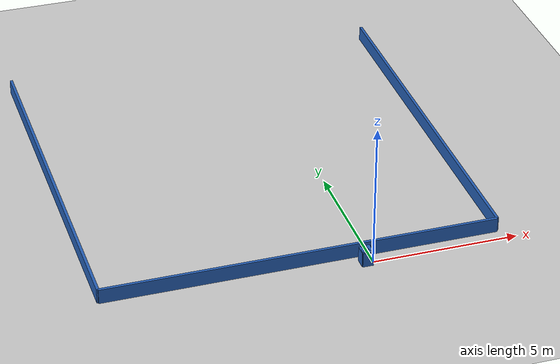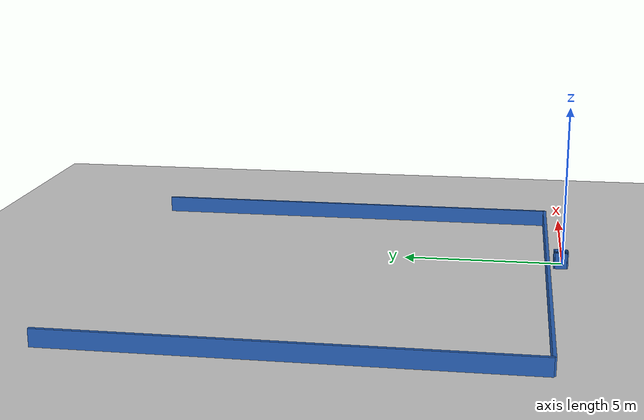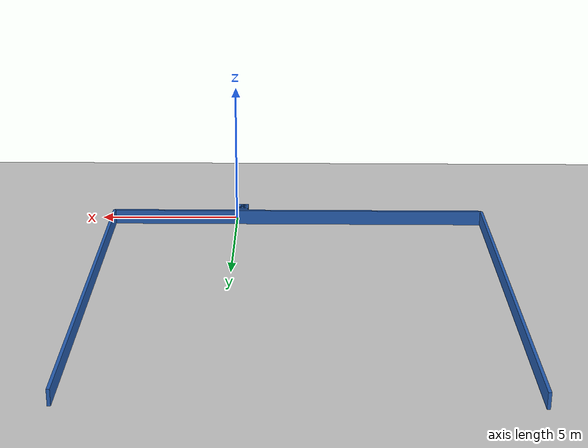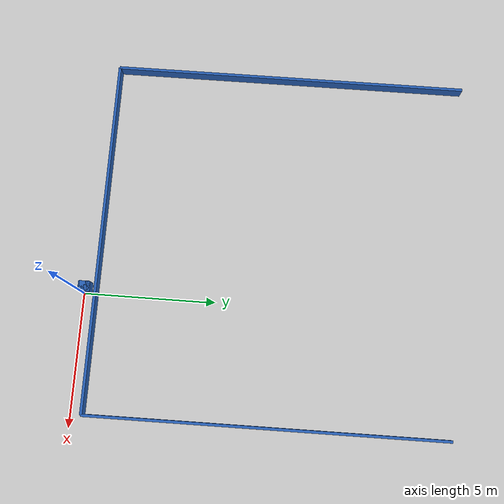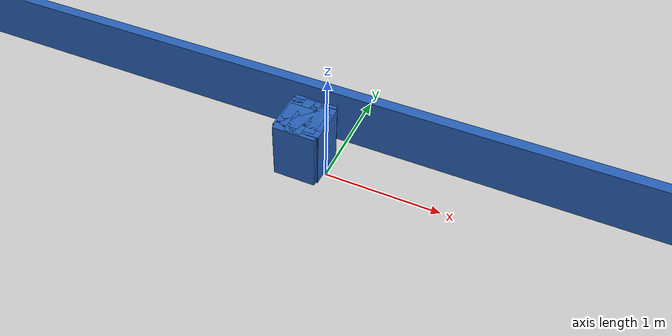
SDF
<?xml version="1.0" ?>
    <sdf version="1.5">
      <world name="default">
        <!-- A global light source -->
        <include>
          <uri>model://sun</uri>
        </include>
        <!-- A ground plane -->
        <include>
          <uri>model://ground_plane</uri>
        </include>

    <model name='libopen_space_final_T2B_115_24'>
      <static>1</static>
      <pose frame=''>-0.225000 0.075000 0.000000 0.000000 0.000000 0.000000</pose>
      <link name='link'>
        <inertial>
          <mass>1</mass>
          <inertia>
            <ixx>0.145833</ixx>
            <ixy>0</ixy>
            <ixz>0</ixz>
            <iyy>0.145833</iyy>
            <iyz>0</iyz>
            <izz>0.125</izz>
          </inertia>
        </inertial>
        <collision name='collision'>
          <geometry>
            <box>
              <size>0.14 0.20 1</size>
            </box>
          </geometry>
          <max_contacts>10</max_contacts>
          <surface>
            <contact>
              <ode/>
            </contact>
            <bounce/>
            <friction>
              <torsional>
                <ode/>
              </torsional>
              <ode/>
            </friction>
          </surface>
        </collision>
        <visual name='visual'>
          <geometry>
            <box>
              <size>0.14 0.20 1</size>
            </box>
          </geometry>
	    <material>
              <ambient>0.152000 0.379000 0.720000 1</ambient>
	      <diffuse>0.152000 0.379000 0.720000 1</diffuse>
          </material>
          <material>
            <script>
              <name>Gazebo/Grey</name>
              <uri>file://media/materials/scripts/gazebo.material</uri>
            </script>
          </material>
        </visual>
        <self_collide>0</self_collide>
        <kinematic>0</kinematic>
        <gravity>1</gravity>
      </link>
      <plugin name='libopen_space_final_T2B_115_24' filename='libopen_space_final_T2B_115_24.so'/>
    </model>

    <model name='libopen_space_final_T2B_125_59'>
      <static>1</static>
      <pose frame=''>-0.225000 0.075000 0.000000 0.000000 0.000000 0.000000</pose>
      <link name='link'>
        <inertial>
          <mass>1</mass>
          <inertia>
            <ixx>0.145833</ixx>
            <ixy>0</ixy>
            <ixz>0</ixz>
            <iyy>0.145833</iyy>
            <iyz>0</iyz>
            <izz>0.125</izz>
          </inertia>
        </inertial>
        <collision name='collision'>
          <geometry>
            <box>
              <size>0.11 0.42 1</size>
            </box>
          </geometry>
          <max_contacts>10</max_contacts>
          <surface>
            <contact>
              <ode/>
            </contact>
            <bounce/>
            <friction>
              <torsional>
                <ode/>
              </torsional>
              <ode/>
            </friction>
          </surface>
        </collision>
        <visual name='visual'>
          <geometry>
            <box>
              <size>0.11 0.42 1</size>
            </box>
          </geometry>
	    <material>
              <ambient>0.152000 0.379000 0.720000 1</ambient>
	      <diffuse>0.152000 0.379000 0.720000 1</diffuse>
          </material>
          <material>
            <script>
              <name>Gazebo/Grey</name>
              <uri>file://media/materials/scripts/gazebo.material</uri>
            </script>
          </material>
        </visual>
        <self_collide>0</self_collide>
        <kinematic>0</kinematic>
        <gravity>1</gravity>
      </link>
      <plugin name='libopen_space_final_T2B_125_59' filename='libopen_space_final_T2B_125_59.so'/>
    </model>

    <model name='libopen_space_final_T2B_121_6'>
      <static>1</static>
      <pose frame=''>-0.225000 0.075000 0.000000 0.000000 0.000000 0.000000</pose>
      <link name='link'>
        <inertial>
          <mass>1</mass>
          <inertia>
            <ixx>0.145833</ixx>
            <ixy>0</ixy>
            <ixz>0</ixz>
            <iyy>0.145833</iyy>
            <iyz>0</iyz>
            <izz>0.125</izz>
          </inertia>
        </inertial>
        <collision name='collision'>
          <geometry>
            <box>
              <size>0.14 0.16 1</size>
            </box>
          </geometry>
          <max_contacts>10</max_contacts>
          <surface>
            <contact>
              <ode/>
            </contact>
            <bounce/>
            <friction>
              <torsional>
                <ode/>
              </torsional>
              <ode/>
            </friction>
          </surface>
        </collision>
        <visual name='visual'>
          <geometry>
            <box>
              <size>0.14 0.16 1</size>
            </box>
          </geometry>
	    <material>
              <ambient>0.152000 0.379000 0.720000 1</ambient>
	      <diffuse>0.152000 0.379000 0.720000 1</diffuse>
          </material>
          <material>
            <script>
              <name>Gazebo/Grey</name>
              <uri>file://media/materials/scripts/gazebo.material</uri>
            </script>
          </material>
        </visual>
        <self_collide>0</self_collide>
        <kinematic>0</kinematic>
        <gravity>1</gravity>
      </link>
      <plugin name='libopen_space_final_T2B_121_6' filename='libopen_space_final_T2B_121_6.so'/>
    </model>

    <model name='libopen_space_final_T2B_77_58'>
      <static>1</static>
      <pose frame=''>-0.225000 0.075000 0.000000 0.000000 0.000000 0.000000</pose>
      <link name='link'>
        <inertial>
          <mass>1</mass>
          <inertia>
            <ixx>0.145833</ixx>
            <ixy>0</ixy>
            <ixz>0</ixz>
            <iyy>0.145833</iyy>
            <iyz>0</iyz>
            <izz>0.125</izz>
          </inertia>
        </inertial>
        <collision name='collision'>
          <geometry>
            <box>
              <size>0.39 0.38 1</size>
            </box>
          </geometry>
          <max_contacts>10</max_contacts>
          <surface>
            <contact>
              <ode/>
            </contact>
            <bounce/>
            <friction>
              <torsional>
                <ode/>
              </torsional>
              <ode/>
            </friction>
          </surface>
        </collision>
        <visual name='visual'>
          <geometry>
            <box>
              <size>0.39 0.38 1</size>
            </box>
          </geometry>
	    <material>
              <ambient>0.152000 0.379000 0.720000 1</ambient>
	      <diffuse>0.152000 0.379000 0.720000 1</diffuse>
          </material>
          <material>
            <script>
              <name>Gazebo/Grey</name>
              <uri>file://media/materials/scripts/gazebo.material</uri>
            </script>
          </material>
        </visual>
        <self_collide>0</self_collide>
        <kinematic>0</kinematic>
        <gravity>1</gravity>
      </link>
      <plugin name='libopen_space_final_T2B_77_58' filename='libopen_space_final_T2B_77_58.so'/>
    </model>

    <model name='libopen_space_final_T2B_103_85'>
      <static>1</static>
      <pose frame=''>-0.225000 0.075000 0.000000 0.000000 0.000000 0.000000</pose>
      <link name='link'>
        <inertial>
          <mass>1</mass>
          <inertia>
            <ixx>0.145833</ixx>
            <ixy>0</ixy>
            <ixz>0</ixz>
            <iyy>0.145833</iyy>
            <iyz>0</iyz>
            <izz>0.125</izz>
          </inertia>
        </inertial>
        <collision name='collision'>
          <geometry>
            <box>
              <size>0.35 0.38 1</size>
            </box>
          </geometry>
          <max_contacts>10</max_contacts>
          <surface>
            <contact>
              <ode/>
            </contact>
            <bounce/>
            <friction>
              <torsional>
                <ode/>
              </torsional>
              <ode/>
            </friction>
          </surface>
        </collision>
        <visual name='visual'>
          <geometry>
            <box>
              <size>0.35 0.38 1</size>
            </box>
          </geometry>
	    <material>
              <ambient>0.152000 0.379000 0.720000 1</ambient>
	      <diffuse>0.152000 0.379000 0.720000 1</diffuse>
          </material>
          <material>
            <script>
              <name>Gazebo/Grey</name>
              <uri>file://media/materials/scripts/gazebo.material</uri>
            </script>
          </material>
        </visual>
        <self_collide>0</self_collide>
        <kinematic>0</kinematic>
        <gravity>1</gravity>
      </link>
      <plugin name='libopen_space_final_T2B_103_85' filename='libopen_space_final_T2B_103_85.so'/>
    </model>

    <model name='libopen_space_final_T2B_122_2'>
      <static>1</static>
      <pose frame=''>-0.225000 0.075000 0.000000 0.000000 0.000000 0.000000</pose>
      <link name='link'>
        <inertial>
          <mass>1</mass>
          <inertia>
            <ixx>0.145833</ixx>
            <ixy>0</ixy>
            <ixz>0</ixz>
            <iyy>0.145833</iyy>
            <iyz>0</iyz>
            <izz>0.125</izz>
          </inertia>
        </inertial>
        <collision name='collision'>
          <geometry>
            <box>
              <size>0.37 0.45 1</size>
            </box>
          </geometry>
          <max_contacts>10</max_contacts>
          <surface>
            <contact>
              <ode/>
            </contact>
            <bounce/>
            <friction>
              <torsional>
                <ode/>
              </torsional>
              <ode/>
            </friction>
          </surface>
        </collision>
        <visual name='visual'>
          <geometry>
            <box>
              <size>0.37 0.45 1</size>
            </box>
          </geometry>
	    <material>
              <ambient>0.152000 0.379000 0.720000 1</ambient>
	      <diffuse>0.152000 0.379000 0.720000 1</diffuse>
          </material>
          <material>
            <script>
              <name>Gazebo/Grey</name>
              <uri>file://media/materials/scripts/gazebo.material</uri>
            </script>
          </material>
        </visual>
        <self_collide>0</self_collide>
        <kinematic>0</kinematic>
        <gravity>1</gravity>
      </link>
      <plugin name='libopen_space_final_T2B_122_2' filename='libopen_space_final_T2B_122_2.so'/>
    </model>

    <model name='libopen_space_final_T2B_123_13'>
      <static>1</static>
      <pose frame=''>-0.225000 0.075000 0.000000 0.000000 0.000000 0.000000</pose>
      <link name='link'>
        <inertial>
          <mass>1</mass>
          <inertia>
            <ixx>0.145833</ixx>
            <ixy>0</ixy>
            <ixz>0</ixz>
            <iyy>0.145833</iyy>
            <iyz>0</iyz>
            <izz>0.125</izz>
          </inertia>
        </inertial>
        <collision name='collision'>
          <geometry>
            <box>
              <size>0.37 0.22 1</size>
            </box>
          </geometry>
          <max_contacts>10</max_contacts>
          <surface>
            <contact>
              <ode/>
            </contact>
            <bounce/>
            <friction>
              <torsional>
                <ode/>
              </torsional>
              <ode/>
            </friction>
          </surface>
        </collision>
        <visual name='visual'>
          <geometry>
            <box>
              <size>0.37 0.22 1</size>
            </box>
          </geometry>
	    <material>
              <ambient>0.152000 0.379000 0.720000 1</ambient>
	      <diffuse>0.152000 0.379000 0.720000 1</diffuse>
          </material>
          <material>
            <script>
              <name>Gazebo/Grey</name>
              <uri>file://media/materials/scripts/gazebo.material</uri>
            </script>
          </material>
        </visual>
        <self_collide>0</self_collide>
        <kinematic>0</kinematic>
        <gravity>1</gravity>
      </link>
      <plugin name='libopen_space_final_T2B_123_13' filename='libopen_space_final_T2B_123_13.so'/>
    </model>

    <model name='libopen_space_final_T2B_103_35'>
      <static>1</static>
      <pose frame=''>-0.225000 0.075000 0.000000 0.000000 0.000000 0.000000</pose>
      <link name='link'>
        <inertial>
          <mass>1</mass>
          <inertia>
            <ixx>0.145833</ixx>
            <ixy>0</ixy>
            <ixz>0</ixz>
            <iyy>0.145833</iyy>
            <iyz>0</iyz>
            <izz>0.125</izz>
          </inertia>
        </inertial>
        <collision name='collision'>
          <geometry>
            <box>
              <size>0.23 0.12 1</size>
            </box>
          </geometry>
          <max_contacts>10</max_contacts>
          <surface>
            <contact>
              <ode/>
            </contact>
            <bounce/>
            <friction>
              <torsional>
                <ode/>
              </torsional>
              <ode/>
            </friction>
          </surface>
        </collision>
        <visual name='visual'>
          <geometry>
            <box>
              <size>0.23 0.12 1</size>
            </box>
          </geometry>
	    <material>
              <ambient>0.152000 0.379000 0.720000 1</ambient>
	      <diffuse>0.152000 0.379000 0.720000 1</diffuse>
          </material>
          <material>
            <script>
              <name>Gazebo/Grey</name>
              <uri>file://media/materials/scripts/gazebo.material</uri>
            </script>
          </material>
        </visual>
        <self_collide>0</self_collide>
        <kinematic>0</kinematic>
        <gravity>1</gravity>
      </link>
      <plugin name='libopen_space_final_T2B_103_35' filename='libopen_space_final_T2B_103_35.so'/>
    </model>

    <model name='libopen_space_final_T2B_73_39'>
      <static>1</static>
      <pose frame=''>-0.225000 0.075000 0.000000 0.000000 0.000000 0.000000</pose>
      <link name='link'>
        <inertial>
          <mass>1</mass>
          <inertia>
            <ixx>0.145833</ixx>
            <ixy>0</ixy>
            <ixz>0</ixz>
            <iyy>0.145833</iyy>
            <iyz>0</iyz>
            <izz>0.125</izz>
          </inertia>
        </inertial>
        <collision name='collision'>
          <geometry>
            <box>
              <size>0.27 0.20 1</size>
            </box>
          </geometry>
          <max_contacts>10</max_contacts>
          <surface>
            <contact>
              <ode/>
            </contact>
            <bounce/>
            <friction>
              <torsional>
                <ode/>
              </torsional>
              <ode/>
            </friction>
          </surface>
        </collision>
        <visual name='visual'>
          <geometry>
            <box>
              <size>0.27 0.20 1</size>
            </box>
          </geometry>
	    <material>
              <ambient>0.152000 0.379000 0.720000 1</ambient>
	      <diffuse>0.152000 0.379000 0.720000 1</diffuse>
          </material>
          <material>
            <script>
              <name>Gazebo/Grey</name>
              <uri>file://media/materials/scripts/gazebo.material</uri>
            </script>
          </material>
        </visual>
        <self_collide>0</self_collide>
        <kinematic>0</kinematic>
        <gravity>1</gravity>
      </link>
      <plugin name='libopen_space_final_T2B_73_39' filename='libopen_space_final_T2B_73_39.so'/>
    </model>

    <model name='libopen_space_final_T2B_105_94'>
      <static>1</static>
      <pose frame=''>-0.225000 0.075000 0.000000 0.000000 0.000000 0.000000</pose>
      <link name='link'>
        <inertial>
          <mass>1</mass>
          <inertia>
            <ixx>0.145833</ixx>
            <ixy>0</ixy>
            <ixz>0</ixz>
            <iyy>0.145833</iyy>
            <iyz>0</iyz>
            <izz>0.125</izz>
          </inertia>
        </inertial>
        <collision name='collision'>
          <geometry>
            <box>
              <size>0.30 0.32 1</size>
            </box>
          </geometry>
          <max_contacts>10</max_contacts>
          <surface>
            <contact>
              <ode/>
            </contact>
            <bounce/>
            <friction>
              <torsional>
                <ode/>
              </torsional>
              <ode/>
            </friction>
          </surface>
        </collision>
        <visual name='visual'>
          <geometry>
            <box>
              <size>0.30 0.32 1</size>
            </box>
          </geometry>
	    <material>
              <ambient>0.152000 0.379000 0.720000 1</ambient>
	      <diffuse>0.152000 0.379000 0.720000 1</diffuse>
          </material>
          <material>
            <script>
              <name>Gazebo/Grey</name>
              <uri>file://media/materials/scripts/gazebo.material</uri>
            </script>
          </material>
        </visual>
        <self_collide>0</self_collide>
        <kinematic>0</kinematic>
        <gravity>1</gravity>
      </link>
      <plugin name='libopen_space_final_T2B_105_94' filename='libopen_space_final_T2B_105_94.so'/>
    </model>

    <model name='libopen_space_final_T2B_140_77'>
      <static>1</static>
      <pose frame=''>-0.225000 0.075000 0.000000 0.000000 0.000000 0.000000</pose>
      <link name='link'>
        <inertial>
          <mass>1</mass>
          <inertia>
            <ixx>0.145833</ixx>
            <ixy>0</ixy>
            <ixz>0</ixz>
            <iyy>0.145833</iyy>
            <iyz>0</iyz>
            <izz>0.125</izz>
          </inertia>
        </inertial>
        <collision name='collision'>
          <geometry>
            <box>
              <size>0.11 0.22 1</size>
            </box>
          </geometry>
          <max_contacts>10</max_contacts>
          <surface>
            <contact>
              <ode/>
            </contact>
            <bounce/>
            <friction>
              <torsional>
                <ode/>
              </torsional>
              <ode/>
            </friction>
          </surface>
        </collision>
        <visual name='visual'>
          <geometry>
            <box>
              <size>0.11 0.22 1</size>
            </box>
          </geometry>
	    <material>
              <ambient>0.152000 0.379000 0.720000 1</ambient>
	      <diffuse>0.152000 0.379000 0.720000 1</diffuse>
          </material>
          <material>
            <script>
              <name>Gazebo/Grey</name>
              <uri>file://media/materials/scripts/gazebo.material</uri>
            </script>
          </material>
        </visual>
        <self_collide>0</self_collide>
        <kinematic>0</kinematic>
        <gravity>1</gravity>
      </link>
      <plugin name='libopen_space_final_T2B_140_77' filename='libopen_space_final_T2B_140_77.so'/>
    </model>

    <model name='libopen_space_final_T2B_114_22'>
      <static>1</static>
      <pose frame=''>-0.225000 0.075000 0.000000 0.000000 0.000000 0.000000</pose>
      <link name='link'>
        <inertial>
          <mass>1</mass>
          <inertia>
            <ixx>0.145833</ixx>
            <ixy>0</ixy>
            <ixz>0</ixz>
            <iyy>0.145833</iyy>
            <iyz>0</iyz>
            <izz>0.125</izz>
          </inertia>
        </inertial>
        <collision name='collision'>
          <geometry>
            <box>
              <size>0.40 0.37 1</size>
            </box>
          </geometry>
          <max_contacts>10</max_contacts>
          <surface>
            <contact>
              <ode/>
            </contact>
            <bounce/>
            <friction>
              <torsional>
                <ode/>
              </torsional>
              <ode/>
            </friction>
          </surface>
        </collision>
        <visual name='visual'>
          <geometry>
            <box>
              <size>0.40 0.37 1</size>
            </box>
          </geometry>
	    <material>
              <ambient>0.152000 0.379000 0.720000 1</ambient>
	      <diffuse>0.152000 0.379000 0.720000 1</diffuse>
          </material>
          <material>
            <script>
              <name>Gazebo/Grey</name>
              <uri>file://media/materials/scripts/gazebo.material</uri>
            </script>
          </material>
        </visual>
        <self_collide>0</self_collide>
        <kinematic>0</kinematic>
        <gravity>1</gravity>
      </link>
      <plugin name='libopen_space_final_T2B_114_22' filename='libopen_space_final_T2B_114_22.so'/>
    </model>

    <model name='libopen_space_final_T2B_105_38'>
      <static>1</static>
      <pose frame=''>-0.225000 0.075000 0.000000 0.000000 0.000000 0.000000</pose>
      <link name='link'>
        <inertial>
          <mass>1</mass>
          <inertia>
            <ixx>0.145833</ixx>
            <ixy>0</ixy>
            <ixz>0</ixz>
            <iyy>0.145833</iyy>
            <iyz>0</iyz>
            <izz>0.125</izz>
          </inertia>
        </inertial>
        <collision name='collision'>
          <geometry>
            <box>
              <size>0.18 0.42 1</size>
            </box>
          </geometry>
          <max_contacts>10</max_contacts>
          <surface>
            <contact>
              <ode/>
            </contact>
            <bounce/>
            <friction>
              <torsional>
                <ode/>
              </torsional>
              <ode/>
            </friction>
          </surface>
        </collision>
        <visual name='visual'>
          <geometry>
            <box>
              <size>0.18 0.42 1</size>
            </box>
          </geometry>
	    <material>
              <ambient>0.152000 0.379000 0.720000 1</ambient>
	      <diffuse>0.152000 0.379000 0.720000 1</diffuse>
          </material>
          <material>
            <script>
              <name>Gazebo/Grey</name>
              <uri>file://media/materials/scripts/gazebo.material</uri>
            </script>
          </material>
        </visual>
        <self_collide>0</self_collide>
        <kinematic>0</kinematic>
        <gravity>1</gravity>
      </link>
      <plugin name='libopen_space_final_T2B_105_38' filename='libopen_space_final_T2B_105_38.so'/>
    </model>

        <model name='bottom_wall'>
          <static>1</static>
          <pose frame=''>-2.25 0.5 0.000000 0.000000 0.000000 1.57079632</pose>
          <link name='link'>
            <inertial>
            <mass>1</mass>
            <inertia>
              <ixx>0.145833</ixx>
              <ixy>0</ixy>
              <ixz>0</ixz>
              <iyy>0.145833</iyy>
              <iyz>0</iyz>
              <izz>0.125</izz>
            </inertia>
            </inertial>
            <collision name='collision'>
            <geometry>
              <box>
              <size>0.1 13.5 1</size>
              </box>
            </geometry>
            <max_contacts>10</max_contacts>
            <surface>
              <contact>
              <ode/>
              </contact>
              <bounce/>
              <friction>
              <torsional>
                <ode/>
              </torsional>
              <ode/>
              </friction>
            </surface>
            </collision>
            <visual name='visual'>
            <geometry>
              <box>
              <size>0.1 13.5 1</size>
              </box>
            </geometry>
            <material>
              <ambient>0.152000 0.379000 0.720000 1</ambient>
            <diffuse>0.152000 0.379000 0.720000 1</diffuse>
            </material>
            <material>
              <script>
              <name>Gazebo/Grey</name>
              <uri>file://media/materials/scripts/gazebo.material</uri>
              </script>
            </material>
            </visual>
            <self_collide>0</self_collide>
            <kinematic>0</kinematic>
            <gravity>1</gravity>
          </link>
        </model>

        <model name='left_wall'>
          <static>1</static>
          <pose frame=''>-9 7.25 0.000000 0.000000 0.000000 0.000000</pose>
          <link name='link'>
            <inertial>
            <mass>1</mass>
            <inertia>
              <ixx>0.145833</ixx>
              <ixy>0</ixy>
              <ixz>0</ixz>
              <iyy>0.145833</iyy>
              <iyz>0</iyz>
              <izz>0.125</izz>
            </inertia>
            </inertial>
            <collision name='collision'>
            <geometry>
              <box>
              <size>0.1 13.5 1</size>
              </box>
            </geometry>
            <max_contacts>10</max_contacts>
            <surface>
              <contact>
              <ode/>
              </contact>
              <bounce/>
              <friction>
              <torsional>
                <ode/>
              </torsional>
              <ode/>
              </friction>
            </surface>
            </collision>
            <visual name='visual'>
            <geometry>
              <box>
              <size>0.1 13.5 1</size>
              </box>
            </geometry>
            <material>
              <ambient>0.152000 0.379000 0.720000 1</ambient>
            <diffuse>0.152000 0.379000 0.720000 1</diffuse>
            </material>
            <material>
              <script>
              <name>Gazebo/Grey</name>
              <uri>file://media/materials/scripts/gazebo.material</uri>
              </script>
            </material>
            </visual>
            <self_collide>0</self_collide>
            <kinematic>0</kinematic>
            <gravity>1</gravity>
          </link>
        </model>

        <model name='right_wall'>
          <static>1</static>
          <pose frame=''>4.5 7.25 0.000000 0.000000 0.000000 0.000000</pose>
          <link name='link'>
            <inertial>
            <mass>1</mass>
            <inertia>
              <ixx>0.145833</ixx>
              <ixy>0</ixy>
              <ixz>0</ixz>
              <iyy>0.145833</iyy>
              <iyz>0</iyz>
              <izz>0.125</izz>
            </inertia>
            </inertial>
            <collision name='collision'>
            <geometry>
              <box>
              <size>0.1 13.5 1</size>
              </box>
            </geometry>
            <max_contacts>10</max_contacts>
            <surface>
              <contact>
              <ode/>
              </contact>
              <bounce/>
              <friction>
              <torsional>
                <ode/>
              </torsional>
              <ode/>
              </friction>
            </surface>
            </collision>
            <visual name='visual'>
            <geometry>
              <box>
              <size>0.1 13.5 1</size>
              </box>
            </geometry>
            <material>
              <ambient>0.152000 0.379000 0.720000 1</ambient>
            <diffuse>0.152000 0.379000 0.720000 1</diffuse>
            </material>
            <material>
              <script>
              <name>Gazebo/Grey</name>
              <uri>file://media/materials/scripts/gazebo.material</uri>
              </script>
            </material>
            </visual>
            <self_collide>0</self_collide>
            <kinematic>0</kinematic>
            <gravity>1</gravity>
          </link>
        </model>

      </world>
    </sdf>"
